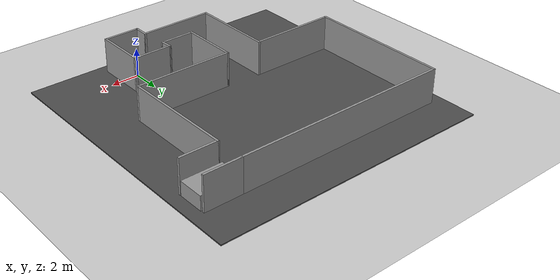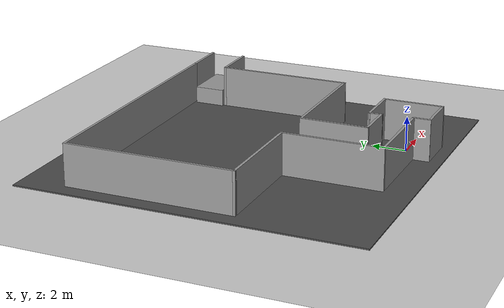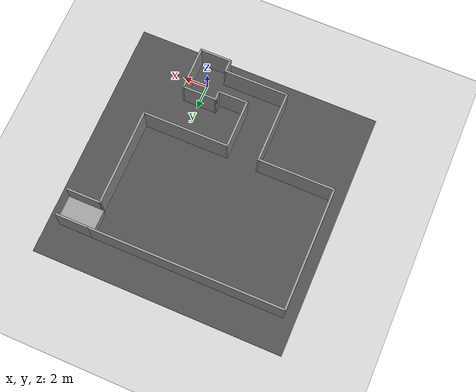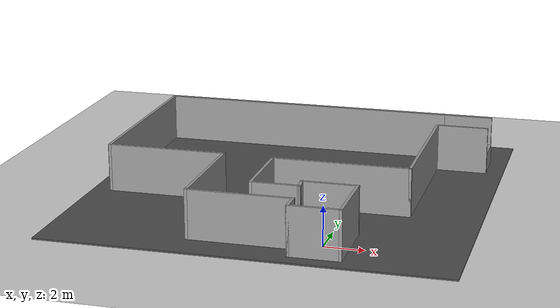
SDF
<sdf version="1.6">
 <world name="default">
  <light name="sun" type="directional">
   <pose>0 0 10 0 -0 0</pose>
   <diffuse>0.8 0.8 0.8 1</diffuse>
   <specular>0.2 0.2 0.2 1</specular>
   <attenuation>
    <range>1000</range>
    <constant>0.9</constant>
    <linear>0.01</linear>
    <quadratic>0.001</quadratic>
   </attenuation>
   <direction>-0.5 0.1 -0.9</direction>
  </light>
  <model name="ground_plane">
   <static>1</static>
   <link name="link">
    <collision name="collision">
     <geometry><plane><normal>0 0 1</normal><size>100 100</size></plane></geometry>
     <surface>
      <contact><collide_bitmask>65535</collide_bitmask></contact>
      <friction><ode><mu>100</mu><mu2>50</mu2></ode></friction>
     </surface>
    </collision>
    <visual name="visual">
     <cast_shadows>0</cast_shadows>
     <geometry><plane><normal>0 0 1</normal><size>100 100</size></plane></geometry>
     <material>
      <script><uri>file://media/materials/scripts/gazebo.material</uri><name>Gazebo/Grey</name></script>
     </material>
    </visual>
   </link>
  </model>
  <gravity>0 0 -9.8</gravity>
  <magnetic_field>6e-06 2.3e-05 -4.2e-05</magnetic_field>
  <atmosphere type="adiabatic"/>
  <physics name="default_physics" default="0" type="ode">
   <max_step_size>0.001</max_step_size>
   <real_time_factor>1</real_time_factor>
   <real_time_update_rate>1000</real_time_update_rate>
  </physics>
  <scene><ambient>0.4 0.4 0.4 1</ambient><background>0.7 0.7 0.7 1</background><shadows>1</shadows></scene>
  <audio><device>default</device></audio>
  <spherical_coordinates>
   <surface_model>EARTH_WGS84</surface_model>
   <latitude_deg>0</latitude_deg>
   <longitude_deg>0</longitude_deg>
   <elevation>0</elevation>
   <heading_deg>0</heading_deg>
  </spherical_coordinates>
  <model name="base3">
   <pose>-3.3318 6.5563 0 0 -0 0</pose>
   <link name="Wall_24">
    <collision name="Wall_24_Collision">
     <geometry><box><size>15.5938 0.15 2.5</size></box></geometry>
     <pose>0 0 1.25 0 -0 0</pose>
    </collision>
    <visual name="Wall_24_Visual">
     <pose>0 0 1.25 0 -0 0</pose>
     <geometry><box><size>15.5938 0.15 2.5</size></box></geometry>
     <material>
      <script><uri>file://media/materials/scripts/gazebo.material</uri><name>Gazebo/Grey</name></script>
      <ambient>1 1 1 1</ambient>
     </material>
     <meta><layer>0</layer></meta>
    </visual>
    <pose>-1.30283 8.24113 0 0 -0 3.14159</pose>
   </link>
   <link name="Wall_25">
    <collision name="Wall_25_Collision">
     <geometry><box><size>9.93212 0.15 2.5</size></box></geometry>
     <pose>0 0 1.25 0 -0 0</pose>
    </collision>
    <visual name="Wall_25_Visual">
     <pose>0 0 1.25 0 -0 0</pose>
     <geometry><box><size>9.93212 0.15 2.5</size></box></geometry>
     <material>
      <script><uri>file://media/materials/scripts/gazebo.material</uri><name>Gazebo/Grey</name></script>
      <ambient>1 1 1 1</ambient>
     </material>
     <meta><layer>0</layer></meta>
    </visual>
    <pose>-9.025 3.35007 0 0 -0 -1.57083</pose>
   </link>
   <link name="Wall_26">
    <collision name="Wall_26_Collision">
     <geometry><box><size>6.18234 0.15 2.5</size></box></geometry>
     <pose>0 0 1.25 0 -0 0</pose>
    </collision>
    <visual name="Wall_26_Visual">
     <pose>0 0 1.25 0 -0 0</pose>
     <geometry><box><size>6.18234 0.15 2.5</size></box></geometry>
     <material>
      <script><uri>file://media/materials/scripts/gazebo.material</uri><name>Gazebo/Grey</name></script>
      <ambient>1 1 1 1</ambient>
     </material>
     <meta><layer>0</layer></meta>
    </visual>
    <pose>-6.009 -1.54093 0 0 -0 2e-05</pose>
   </link>
   <link name="Wall_27">
    <collision name="Wall_27_Collision">
     <geometry><box><size>5.90845 0.15 2.5</size></box></geometry>
     <pose>0 0 1.25 0 -0 0</pose>
    </collision>
    <visual name="Wall_27_Visual">
     <pose>0 0 1.25 0 -0 0</pose>
     <geometry><box><size>5.90845 0.15 2.5</size></box></geometry>
     <material>
      <script><uri>file://media/materials/scripts/gazebo.material</uri><name>Gazebo/Grey</name></script>
      <ambient>1 1 1 1</ambient>
     </material>
     <meta><layer>0</layer></meta>
    </visual>
    <pose>-2.99283 -4.41987 0 0 -0 -1.5708</pose>
   </link>
   <link name="Wall_28">
    <collision name="Wall_28_Collision">
     <geometry><box><size>5.25 0.15 2.5</size></box></geometry>
     <pose>0 0 1.25 0 -0 0</pose>
    </collision>
    <visual name="Wall_28_Visual">
     <pose>0 0 1.25 0 -0 0</pose>
     <geometry><box><size>5.25 0.15 2.5</size></box></geometry>
     <material>
      <script><uri>file://media/materials/scripts/gazebo.material</uri><name>Gazebo/Grey</name></script>
      <ambient>1 1 1 1</ambient>
     </material>
     <meta><layer>0</layer></meta>
    </visual>
    <pose>-0.442828 -7.29887 0 0 -0 0</pose>
   </link>
   <link name="Wall_29">
    <collision name="Wall_29_Collision">
     <geometry><box><size>1.092 0.15 2.5</size></box></geometry>
     <pose>0 0 1.25 0 -0 0</pose>
    </collision>
    <visual name="Wall_29_Visual">
     <pose>0 0 1.25 0 -0 0</pose>
     <geometry><box><size>1.092 0.15 2.5</size></box></geometry>
     <material>
      <script><uri>file://media/materials/scripts/gazebo.material</uri><name>Gazebo/Grey</name></script>
      <ambient>1 1 1 1</ambient>
     </material>
     <meta><layer>0</layer></meta>
    </visual>
    <pose>2.10717 -7.76987 0 0 -0 -1.5708</pose>
   </link>
   <link name="Wall_30">
    <collision name="Wall_30_Collision">
     <geometry><box><size>2.595 0.15 2.5</size></box></geometry>
     <pose>0 0 1.25 0 -0 0</pose>
    </collision>
    <visual name="Wall_30_Visual">
     <pose>0 0 1.25 0 -0 0</pose>
     <geometry><box><size>2.595 0.15 2.5</size></box></geometry>
     <material>
      <script><uri>file://media/materials/scripts/gazebo.material</uri><name>Gazebo/Grey</name></script>
      <ambient>1 1 1 1</ambient>
     </material>
     <meta><layer>0</layer></meta>
    </visual>
    <pose>3.32967 -8.24087 0 0 -0 0</pose>
   </link>
   <link name="Wall_31">
    <collision name="Wall_31_Collision">
     <geometry><box><size>3.59352 0.15 2.5</size></box></geometry>
     <pose>0 0 1.25 0 -0 0</pose>
    </collision>
    <visual name="Wall_31_Visual">
     <pose>0 0 1.25 0 -0 0</pose>
     <geometry><box><size>3.59352 0.15 2.5</size></box></geometry>
     <material>
      <script><uri>file://media/materials/scripts/gazebo.material</uri><name>Gazebo/Grey</name></script>
      <ambient>1 1 1 1</ambient>
     </material>
     <meta><layer>0</layer></meta>
    </visual>
    <pose>4.55217 -6.51937 0 0 -0 1.5708</pose>
   </link>
   <link name="Wall_32">
    <collision name="Wall_32_Collision">
     <geometry><box><size>2.836 0.15 2.5</size></box></geometry>
     <pose>0 0 1.25 0 -0 0</pose>
    </collision>
    <visual name="Wall_32_Visual">
     <pose>0 0 1.25 0 -0 0</pose>
     <geometry><box><size>2.836 0.15 2.5</size></box></geometry>
     <material>
      <script><uri>file://media/materials/scripts/gazebo.material</uri><name>Gazebo/Grey</name></script>
      <ambient>1 1 1 1</ambient>
     </material>
     <meta><layer>0</layer></meta>
    </visual>
    <pose>3.20917 -4.79787 0 0 -0 3.14159</pose>
   </link>
   <link name="Wall_33">
    <collision name="Wall_33_Collision">
     <geometry><box><size>0.845597 0.15 2.5</size></box></geometry>
     <pose>0 0 1.25 0 -0 0</pose>
    </collision>
    <visual name="Wall_33_Visual">
     <pose>0 0 1.25 0 -0 0</pose>
     <geometry><box><size>0.845597 0.15 2.5</size></box></geometry>
     <material>
      <script><uri>file://media/materials/scripts/gazebo.material</uri><name>Gazebo/Grey</name></script>
      <ambient>1 1 1 1</ambient>
     </material>
     <meta><layer>0</layer></meta>
    </visual>
    <pose>1.8955 -5.14443 0 0 -0 -1.48636</pose>
   </link>
   <link name="Wall_34">
    <collision name="Wall_34_Collision">
     <geometry><box><size>2.43391 0.15 2.5</size></box></geometry>
     <pose>0 0 1.25 0 -0 0</pose>
    </collision>
    <visual name="Wall_34_Visual">
     <pose>0 0 1.25 0 -0 0</pose>
     <geometry><box><size>2.43391 0.15 2.5</size></box></geometry>
     <material>
      <script><uri>file://media/materials/scripts/gazebo.material</uri><name>Gazebo/Grey</name></script>
      <ambient>1 1 1 1</ambient>
     </material>
     <meta><layer>0</layer></meta>
    </visual>
    <pose>0.782876 -5.49099 0 0 -0 3.14159</pose>
   </link>
   <link name="Wall_35">
    <collision name="Wall_35_Collision">
     <geometry><box><size>4 0.15 2.5</size></box></geometry>
     <pose>0 0 1.25 0 -0 0</pose>
    </collision>
    <visual name="Wall_35_Visual">
     <pose>0 0 1.25 0 -0 0</pose>
     <geometry><box><size>4 0.15 2.5</size></box></geometry>
     <material>
      <script><uri>file://media/materials/scripts/gazebo.material</uri><name>Gazebo/Grey</name></script>
      <ambient>1 1 1 1</ambient>
     </material>
     <meta><layer>0</layer></meta>
    </visual>
    <pose>-0.427089 -3.56599 0 0 -0 1.5708</pose>
   </link>
   <link name="Wall_36">
    <collision name="Wall_36_Collision">
     <geometry><box><size>6.93391 0.15 2.5</size></box></geometry>
     <pose>0 0 1.25 0 -0 0</pose>
    </collision>
    <visual name="Wall_36_Visual">
     <pose>0 0 1.25 0 -0 0</pose>
     <geometry><box><size>6.93391 0.15 2.5</size></box></geometry>
     <material>
      <script><uri>file://media/materials/scripts/gazebo.material</uri><name>Gazebo/Grey</name></script>
      <ambient>1 1 1 1</ambient>
     </material>
     <meta><layer>0</layer></meta>
    </visual>
    <pose>3.03288 -1.64099 0 0 -0 0</pose>
   </link>
   <link name="Wall_37">
    <collision name="Wall_37_Collision">
     <geometry><box><size>7.95612 0.15 2.5</size></box></geometry>
     <pose>0 0 1.25 0 -0 0</pose>
    </collision>
    <visual name="Wall_37_Visual">
     <pose>0 0 1.25 0 -0 0</pose>
     <geometry><box><size>7.95612 0.15 2.5</size></box></geometry>
     <material>
      <script><uri>file://media/materials/scripts/gazebo.material</uri><name>Gazebo/Grey</name></script>
      <ambient>1 1 1 1</ambient>
     </material>
     <meta><layer>0</layer></meta>
    </visual>
    <pose>6.425 2.26207 0 0 -0 1.57075</pose>
   </link>
   <link name="Wall_38">
    <collision name="Wall_38_Collision">
     <geometry><box><size>2.75 0.15 2.5</size></box></geometry>
     <pose>0 0 1.25 0 -0 0</pose>
    </collision>
    <visual name="Wall_38_Visual">
     <pose>0 0 1.25 0 -0 0</pose>
     <geometry><box><size>2.75 0.15 2.5</size></box></geometry>
     <material>
      <script><uri>file://media/materials/scripts/gazebo.material</uri><name>Gazebo/Grey</name></script>
      <ambient>1 1 1 1</ambient>
     </material>
     <meta><layer>0</layer></meta>
    </visual>
    <pose>7.72517 6.16513 0 0 -0 0</pose>
   </link>
   <link name="Wall_40">
    <collision name="Wall_40_Collision">
     <geometry><box><size>2.697 0.15 2.5</size></box></geometry>
     <pose>0 0 1.25 0 -0 0</pose>
    </collision>
    <visual name="Wall_40_Visual">
     <pose>0 0 1.25 0 -0 0</pose>
     <geometry><box><size>2.697 0.15 2.5</size></box></geometry>
     <material>
      <script><uri>file://media/materials/scripts/gazebo.material</uri><name>Gazebo/Grey</name></script>
      <ambient>1 1 1 1</ambient>
     </material>
     <meta><layer>0</layer></meta>
    </visual>
    <pose>7.69267 8.24113 0 0 -0 3.14159</pose>
   </link>
   <static>1</static>
  </model>
  <model name="asphalt_plane">
   <static>1</static>
   <link name="link">
    <collision name="collision"><geometry><box><size>20 20 0.1</size></box></geometry></collision>
    <visual name="visual">
     <cast_shadows>0</cast_shadows>
     <geometry><box><size>20 20 0.1</size></box></geometry>
     <material>
      <script>
       <uri>model://asphalt_plane/materials/scripts</uri>
       <uri>model://asphalt_plane/materials/textures</uri>
       <name>vrc/asphalt</name>
      </script>
     </material>
    </visual>
   </link>
   <pose>-3.35147 7.51507 0 0 -0 0</pose>
  </model>
  <model name="unit_box">
   <pose>4.31463 13.7343 0.549995 5e-06 -0 -3.8e-05</pose>
   <link name="link">
    <inertial>
     <mass>1</mass>
     <inertia>
      <ixx>0.166667</ixx>
      <ixy>0</ixy>
      <ixz>0</ixz>
      <iyy>0.166667</iyy>
      <iyz>0</iyz>
      <izz>0.166667</izz>
     </inertia>
    </inertial>
    <collision name="collision"><geometry><box><size>2.88354 1.78561 1</size></box></geometry></collision>
    <visual name="visual">
     <geometry><box><size>2.88354 1.78561 1</size></box></geometry>
     <material>
      <script><name>Gazebo/Grey</name><uri>file://media/materials/scripts/gazebo.material</uri></script>
     </material>
    </visual>
   </link>
  </model>
 </world>
</sdf>
